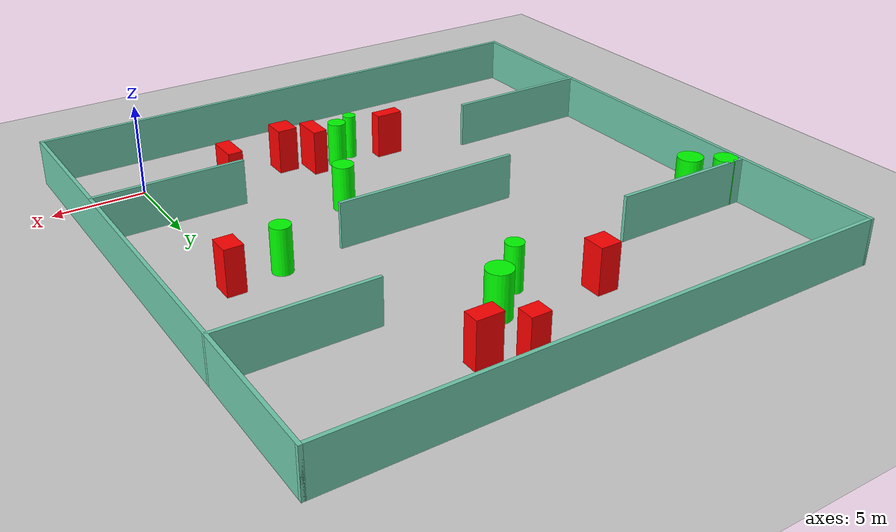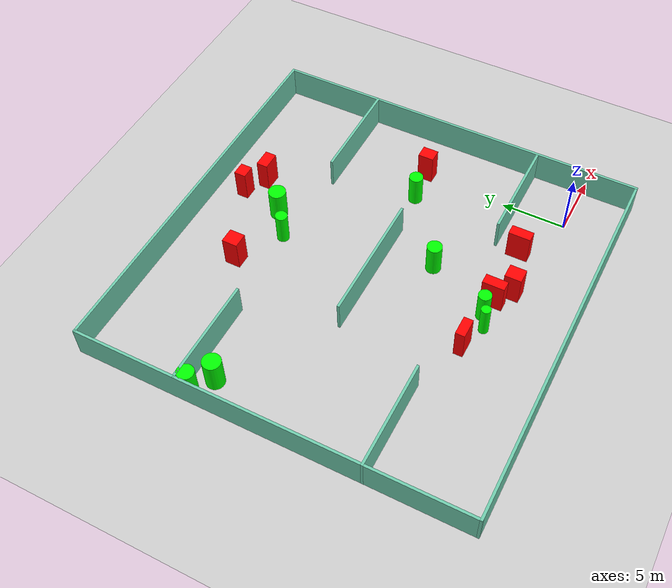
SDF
<sdf version="1.7">
 <world name="default">
  <light name="sun" type="directional">
   <pose>0 0 10 0 -0 0</pose>
   <diffuse>0.8 0.8 0.8 1</diffuse>
   <specular>0.2 0.2 0.2 1</specular>
   <attenuation>
    <range>1000</range>
    <constant>0.9</constant>
    <linear>0.01</linear>
    <quadratic>0.001</quadratic>
   </attenuation>
   <direction>-0.5 0.1 -0.9</direction>
   <spot><inner_angle>0</inner_angle><outer_angle>0</outer_angle><falloff>0</falloff></spot>
  </light>
  <model name="ground_plane">
   <static>1</static>
   <link name="link">
    <collision name="collision">
     <geometry><plane><normal>0 0 1</normal><size>100 100</size></plane></geometry>
     <surface>
      <contact><collide_bitmask>65535</collide_bitmask></contact>
      <friction><ode><mu>100</mu><mu2>50</mu2></ode></friction>
     </surface>
    </collision>
    <visual name="visual">
     <cast_shadows>0</cast_shadows>
     <geometry><plane><normal>0 0 1</normal><size>100 100</size></plane></geometry>
     <material>
      <script><uri>file://media/materials/scripts/gazebo.material</uri><name>Gazebo/Grey</name></script>
     </material>
    </visual>
   </link>
  </model>
  <gravity>0 0 -9.8</gravity>
  <magnetic_field>6e-06 2.3e-05 -4.2e-05</magnetic_field>
  <atmosphere type="adiabatic"/>
  <physics type="ode">
   <max_step_size>0.001</max_step_size>
   <real_time_factor>1</real_time_factor>
   <real_time_update_rate>1000</real_time_update_rate>
  </physics>
  <scene><ambient>0.4 0.4 0.4 1</ambient><background>0.7 0.7 0.7 1</background><shadows>1</shadows></scene>
  <spherical_coordinates>
   <surface_model>EARTH_WGS84</surface_model>
   <latitude_deg>0</latitude_deg>
   <longitude_deg>0</longitude_deg>
   <elevation>0</elevation>
   <heading_deg>0</heading_deg>
  </spherical_coordinates>
  <model name="my_base_walls">
   <link name="Wall_10">
    <collision name="Wall_10_Collision">
     <geometry><box><size>8.2 0.2 2.5</size></box></geometry>
     <pose>0 0 1.25 0 -0 0</pose>
    </collision>
    <visual name="Wall_10_Visual">
     <pose>0 0 1.25 0 -0 0</pose>
     <geometry><box><size>8.2 0.2 2.5</size></box></geometry>
     <material>
      <script><uri>file://media/materials/scripts/gazebo.material</uri><name>Gazebo/Grey</name></script>
      <ambient>0.435294 0.796078 0.67451 1</ambient>
     </material>
     <meta><layer>0</layer></meta>
    </visual>
    <pose>-11 -7 0 0 -0 0</pose>
   </link>
   <link name="Wall_12">
    <collision name="Wall_12_Collision">
     <geometry><box><size>8.2 0.2 2.5</size></box></geometry>
     <pose>0 0 1.25 0 -0 0</pose>
    </collision>
    <visual name="Wall_12_Visual">
     <pose>0 0 1.25 0 -0 0</pose>
     <geometry><box><size>8.2 0.2 2.5</size></box></geometry>
     <material>
      <script><uri>file://media/materials/scripts/gazebo.material</uri><name>Gazebo/Grey</name></script>
      <ambient>0.435294 0.796078 0.67451 1</ambient>
     </material>
     <meta><layer>0</layer></meta>
    </visual>
    <pose>-11 7 0 0 -0 0</pose>
   </link>
   <link name="Wall_14">
    <collision name="Wall_14_Collision">
     <geometry><box><size>8.2 0.2 2.5</size></box></geometry>
     <pose>0 0 1.25 0 -0 0</pose>
    </collision>
    <visual name="Wall_14_Visual">
     <pose>0 0 1.25 0 -0 0</pose>
     <geometry><box><size>8.2 0.2 2.5</size></box></geometry>
     <material>
      <script><uri>file://media/materials/scripts/gazebo.material</uri><name>Gazebo/Grey</name></script>
      <ambient>0.435294 0.796078 0.67451 1</ambient>
     </material>
     <meta><layer>0</layer></meta>
    </visual>
    <pose>11 7 0 0 -0 3.14159</pose>
   </link>
   <link name="Wall_16">
    <collision name="Wall_16_Collision">
     <geometry><box><size>10.2 0.2 2.5</size></box></geometry>
     <pose>0 0 1.25 0 -0 0</pose>
    </collision>
    <visual name="Wall_16_Visual">
     <pose>0 0 1.25 0 -0 0</pose>
     <geometry><box><size>10.2 0.2 2.5</size></box></geometry>
     <material>
      <script><uri>file://media/materials/scripts/gazebo.material</uri><name>Gazebo/Grey</name></script>
      <ambient>0.435294 0.796078 0.67451 1</ambient>
     </material>
     <meta><layer>0</layer></meta>
    </visual>
    <pose>0 0 0 0 -0 3.14159</pose>
   </link>
   <link name="Wall_2">
    <collision name="Wall_2_Collision">
     <geometry><box><size>30.2 0.2 2.5</size></box></geometry>
     <pose>0 0 1.25 0 -0 0</pose>
    </collision>
    <visual name="Wall_2_Visual">
     <pose>0 0 1.25 0 -0 0</pose>
     <geometry><box><size>30.2 0.2 2.5</size></box></geometry>
     <material>
      <script><uri>file://media/materials/scripts/gazebo.material</uri><name>Gazebo/Grey</name></script>
      <ambient>0.435294 0.796078 0.67451 1</ambient>
     </material>
     <meta><layer>0</layer></meta>
    </visual>
    <pose>0 -15 0 0 -0 3.14159</pose>
   </link>
   <link name="Wall_3">
    <collision name="Wall_3_Collision">
     <geometry><box><size>30.2 0.2 2.5</size></box></geometry>
     <pose>0 0 1.25 0 -0 0</pose>
    </collision>
    <visual name="Wall_3_Visual">
     <pose>0 0 1.25 0 -0 0</pose>
     <geometry><box><size>30.2 0.2 2.5</size></box></geometry>
     <material>
      <script><uri>file://media/materials/scripts/gazebo.material</uri><name>Gazebo/Grey</name></script>
      <ambient>0.435294 0.796078 0.67451 1</ambient>
     </material>
     <meta><layer>0</layer></meta>
    </visual>
    <pose>-15 0 0 0 -0 1.5708</pose>
   </link>
   <link name="Wall_4">
    <collision name="Wall_4_Collision">
     <geometry><box><size>30.2 0.2 2.5</size></box></geometry>
     <pose>0 0 1.25 0 -0 0</pose>
    </collision>
    <visual name="Wall_4_Visual">
     <pose>0 0 1.25 0 -0 0</pose>
     <geometry><box><size>30.2 0.2 2.5</size></box></geometry>
     <material>
      <script><uri>file://media/materials/scripts/gazebo.material</uri><name>Gazebo/Grey</name></script>
      <ambient>0.435294 0.796078 0.67451 1</ambient>
     </material>
     <meta><layer>0</layer></meta>
    </visual>
    <pose>0 15 0 0 -0 0</pose>
   </link>
   <link name="Wall_6">
    <collision name="Wall_6_Collision">
     <geometry><box><size>30.2 0.2 2.5</size></box></geometry>
     <pose>0 0 1.25 0 -0 0</pose>
    </collision>
    <visual name="Wall_6_Visual">
     <pose>0 0 1.25 0 -0 0</pose>
     <geometry><box><size>30.2 0.2 2.5</size></box></geometry>
     <material>
      <script><uri>file://media/materials/scripts/gazebo.material</uri><name>Gazebo/Grey</name></script>
      <ambient>0.435294 0.796078 0.67451 1</ambient>
     </material>
     <meta><layer>0</layer></meta>
    </visual>
    <pose>15 0 0 0 -0 1.5708</pose>
   </link>
   <link name="Wall_8">
    <collision name="Wall_8_Collision">
     <geometry><box><size>8.2 0.2 2.5</size></box></geometry>
     <pose>0 0 1.25 0 -0 0</pose>
    </collision>
    <visual name="Wall_8_Visual">
     <pose>0 0 1.25 0 -0 0</pose>
     <geometry><box><size>8.2 0.2 2.5</size></box></geometry>
     <material>
      <script><uri>file://media/materials/scripts/gazebo.material</uri><name>Gazebo/Grey</name></script>
      <ambient>0.435294 0.796078 0.67451 1</ambient>
     </material>
     <meta><layer>0</layer></meta>
    </visual>
    <pose>11 -7 0 0 -0 3.14159</pose>
   </link>
   <static>1</static>
   <pose>-11 11 0 0 -0 0</pose>
  </model>
  <model name="cylinder1">
   <static>1</static>
   <link name="link">
    <inertial>
     <mass>1</mass>
     <inertia><ixx>0.5</ixx><ixy>0</ixy><ixz>0</ixz><iyy>0.5</iyy><iyz>0</iyz><izz>1</izz></inertia>
    </inertial>
    <collision name="collision">
     <geometry><cylinder><radius>0.5440292260434421</radius><length>2.5</length></cylinder></geometry>
    </collision>
    <visual name="visual">
     <geometry><cylinder><radius>0.5440292260434421</radius><length>2.5</length></cylinder></geometry>
     <material>
      <ambient>0 1 0 1</ambient>
      <diffuse>0 1 0 1</diffuse>
      <specular>0.1 0.1 0.1 1</specular>
      <emissive>0 0 0 0</emissive>
     </material>
    </visual>
   </link>
   <pose>-2.525855583748548 11.439727270936451 1.25 0 0 0</pose>
  </model>
  <model name="cylinder2">
   <static>1</static>
   <link name="link">
    <inertial>
     <mass>1</mass>
     <inertia><ixx>0.5</ixx><ixy>0</ixy><ixz>0</ixz><iyy>0.5</iyy><iyz>0</iyz><izz>1</izz></inertia>
    </inertial>
    <collision name="collision">
     <geometry><cylinder><radius>0.6923728247004899</radius><length>2.5</length></cylinder></geometry>
    </collision>
    <visual name="visual">
     <geometry><cylinder><radius>0.6923728247004899</radius><length>2.5</length></cylinder></geometry>
     <material>
      <ambient>0 1 0 1</ambient>
      <diffuse>0 1 0 1</diffuse>
      <specular>0.1 0.1 0.1 1</specular>
      <emissive>0 0 0 0</emissive>
     </material>
    </visual>
   </link>
   <pose>-23.86532105991028 16.373936604385335 1.25 0 0 0</pose>
  </model>
  <model name="cylinder3">
   <static>1</static>
   <link name="link">
    <inertial>
     <mass>1</mass>
     <inertia><ixx>0.5</ixx><ixy>0</ixy><ixz>0</ixz><iyy>0.5</iyy><iyz>0</iyz><izz>1</izz></inertia>
    </inertial>
    <collision name="collision">
     <geometry><cylinder><radius>0.4729618606346361</radius><length>2.5</length></cylinder></geometry>
    </collision>
    <visual name="visual">
     <geometry><cylinder><radius>0.4729618606346361</radius><length>2.5</length></cylinder></geometry>
     <material>
      <ambient>0 1 0 1</ambient>
      <diffuse>0 1 0 1</diffuse>
      <specular>0.1 0.1 0.1 1</specular>
      <emissive>0 0 0 0</emissive>
     </material>
    </visual>
   </link>
   <pose>-10.648624685185375 18.708728916984263 1.25 0 0 0</pose>
  </model>
  <model name="cylinder4">
   <static>1</static>
   <link name="link">
    <inertial>
     <mass>1</mass>
     <inertia><ixx>0.5</ixx><ixy>0</ixy><ixz>0</ixz><iyy>0.5</iyy><iyz>0</iyz><izz>1</izz></inertia>
    </inertial>
    <collision name="collision">
     <geometry><cylinder><radius>0.580364227348078</radius><length>2.5</length></cylinder></geometry>
    </collision>
    <visual name="visual">
     <geometry><cylinder><radius>0.580364227348078</radius><length>2.5</length></cylinder></geometry>
     <material>
      <ambient>0 1 0 1</ambient>
      <diffuse>0 1 0 1</diffuse>
      <specular>0.1 0.1 0.1 1</specular>
      <emissive>0 0 0 0</emissive>
     </material>
    </visual>
   </link>
   <pose>-8.18407515742765 7.280280895026102 1.25 0 0 0</pose>
  </model>
  <model name="cylinder5">
   <static>1</static>
   <link name="link">
    <inertial>
     <mass>1</mass>
     <inertia><ixx>0.5</ixx><ixy>0</ixy><ixz>0</ixz><iyy>0.5</iyy><iyz>0</iyz><izz>1</izz></inertia>
    </inertial>
    <collision name="collision">
     <geometry><cylinder><radius>0.36807019094270826</radius><length>2.5</length></cylinder></geometry>
    </collision>
    <visual name="visual">
     <geometry><cylinder><radius>0.36807019094270826</radius><length>2.5</length></cylinder></geometry>
     <material>
      <ambient>0 1 0 1</ambient>
      <diffuse>0 1 0 1</diffuse>
      <specular>0.1 0.1 0.1 1</specular>
      <emissive>0 0 0 0</emissive>
     </material>
    </visual>
   </link>
   <pose>-11.657934395097207 1.769697462646433 1.25 0 0 0</pose>
  </model>
  <model name="cylinder6">
   <static>1</static>
   <link name="link">
    <inertial>
     <mass>1</mass>
     <inertia><ixx>0.5</ixx><ixy>0</ixy><ixz>0</ixz><iyy>0.5</iyy><iyz>0</iyz><izz>1</izz></inertia>
    </inertial>
    <collision name="collision">
     <geometry><cylinder><radius>0.6795298057629504</radius><length>2.5</length></cylinder></geometry>
    </collision>
    <visual name="visual">
     <geometry><cylinder><radius>0.6795298057629504</radius><length>2.5</length></cylinder></geometry>
     <material>
      <ambient>0 1 0 1</ambient>
      <diffuse>0 1 0 1</diffuse>
      <specular>0.1 0.1 0.1 1</specular>
      <emissive>0 0 0 0</emissive>
     </material>
    </visual>
   </link>
   <pose>-8.702432177398135 20.20788125220716 1.25 0 0 0</pose>
  </model>
  <model name="cylinder7">
   <static>1</static>
   <link name="link">
    <inertial>
     <mass>1</mass>
     <inertia><ixx>0.5</ixx><ixy>0</ixy><ixz>0</ixz><iyy>0.5</iyy><iyz>0</iyz><izz>1</izz></inertia>
    </inertial>
    <collision name="collision">
     <geometry><cylinder><radius>0.4990814178958708</radius><length>2.5</length></cylinder></geometry>
    </collision>
    <visual name="visual">
     <geometry><cylinder><radius>0.4990814178958708</radius><length>2.5</length></cylinder></geometry>
     <material>
      <ambient>0 1 0 1</ambient>
      <diffuse>0 1 0 1</diffuse>
      <specular>0.1 0.1 0.1 1</specular>
      <emissive>0 0 0 0</emissive>
     </material>
    </visual>
   </link>
   <pose>-10.553733976448836 2.3066666551701562 1.25 0 0 0</pose>
  </model>
  <model name="cylinder8">
   <static>1</static>
   <link name="link">
    <inertial>
     <mass>1</mass>
     <inertia><ixx>0.5</ixx><ixy>0</ixy><ixz>0</ixz><iyy>0.5</iyy><iyz>0</iyz><izz>1</izz></inertia>
    </inertial>
    <collision name="collision">
     <geometry><cylinder><radius>0.628372858372928</radius><length>2.5</length></cylinder></geometry>
    </collision>
    <visual name="visual">
     <geometry><cylinder><radius>0.628372858372928</radius><length>2.5</length></cylinder></geometry>
     <material>
      <ambient>0 1 0 1</ambient>
      <diffuse>0 1 0 1</diffuse>
      <specular>0.1 0.1 0.1 1</specular>
      <emissive>0 0 0 0</emissive>
     </material>
    </visual>
   </link>
   <pose>-25.330604454366433 17.475803479668215 1.25 0 0 0</pose>
  </model>
  <model name="box1">
   <static>1</static>
   <link name="link">
    <inertial>
     <mass>1</mass>
     <inertia><ixx>0.083</ixx><ixy>0</ixy><ixz>0</ixz><iyy>0.083</iyy><iyz>0</iyz><izz>0.083</izz></inertia>
    </inertial>
    <collision name="collision">
     <geometry><box><size>1.4178167893881368 0.8857583997204784 2.5</size></box></geometry>
    </collision>
    <visual name="visual">
     <geometry><box><size>1.4178167893881368 0.8857583997204784 2.5</size></box></geometry>
     <material>
      <ambient>1 0 0 1</ambient>
      <diffuse>1 0 0 1</diffuse>
      <specular>0.1 0.1 0.1 1</specular>
      <emissive>0 0 0 0</emissive>
     </material>
    </visual>
    <sensor name="my_contact" type="contact">
     <contact><collision>box_collision</collision><topic>__default_topic__</topic></contact>
    </sensor>
   </link>
   <pose>-6.136723602595298 22.669167888589456 1.25 0 0 0</pose>
  </model>
  <model name="box2">
   <static>1</static>
   <link name="link">
    <inertial>
     <mass>1</mass>
     <inertia><ixx>0.083</ixx><ixy>0</ixy><ixz>0</ixz><iyy>0.083</iyy><iyz>0</iyz><izz>0.083</izz></inertia>
    </inertial>
    <collision name="collision">
     <geometry><box><size>1.004499621440258 1.215353850641545 2.5</size></box></geometry>
    </collision>
    <visual name="visual">
     <geometry><box><size>1.004499621440258 1.215353850641545 2.5</size></box></geometry>
     <material>
      <ambient>1 0 0 1</ambient>
      <diffuse>1 0 0 1</diffuse>
      <specular>0.1 0.1 0.1 1</specular>
      <emissive>0 0 0 0</emissive>
     </material>
    </visual>
    <sensor name="my_contact" type="contact">
     <contact><collision>box_collision</collision><topic>__default_topic__</topic></contact>
    </sensor>
   </link>
   <pose>0.18914086968120714 11.677354728184095 1.25 0 0 0</pose>
  </model>
  <model name="box3">
   <static>1</static>
   <link name="link">
    <inertial>
     <mass>1</mass>
     <inertia><ixx>0.083</ixx><ixy>0</ixy><ixz>0</ixz><iyy>0.083</iyy><iyz>0</iyz><izz>0.083</izz></inertia>
    </inertial>
    <collision name="collision">
     <geometry><box><size>1.0454737541249017 0.9249363194879289 2.5</size></box></geometry>
    </collision>
    <visual name="visual">
     <geometry><box><size>1.0454737541249017 0.9249363194879289 2.5</size></box></geometry>
     <material>
      <ambient>1 0 0 1</ambient>
      <diffuse>1 0 0 1</diffuse>
      <specular>0.1 0.1 0.1 1</specular>
      <emissive>0 0 0 0</emissive>
     </material>
    </visual>
    <sensor name="my_contact" type="contact">
     <contact><collision>box_collision</collision><topic>__default_topic__</topic></contact>
    </sensor>
   </link>
   <pose>-7.945905733987921 23.679051106833697 1.25 0 0 0</pose>
  </model>
  <model name="box4">
   <static>1</static>
   <link name="link">
    <inertial>
     <mass>1</mass>
     <inertia><ixx>0.083</ixx><ixy>0</ixy><ixz>0</ixz><iyy>0.083</iyy><iyz>0</iyz><izz>0.083</izz></inertia>
    </inertial>
    <collision name="collision">
     <geometry><box><size>1.1131760502643808 1.2783370857664331 2.5</size></box></geometry>
    </collision>
    <visual name="visual">
     <geometry><box><size>1.1131760502643808 1.2783370857664331 2.5</size></box></geometry>
     <material>
      <ambient>1 0 0 1</ambient>
      <diffuse>1 0 0 1</diffuse>
      <specular>0.1 0.1 0.1 1</specular>
      <emissive>0 0 0 0</emissive>
     </material>
    </visual>
    <sensor name="my_contact" type="contact">
     <contact><collision>box_collision</collision><topic>__default_topic__</topic></contact>
    </sensor>
   </link>
   <pose>-7.796024551812975 1.1198094343116995 1.25 0 0 0</pose>
  </model>
  <model name="box5">
   <static>1</static>
   <link name="link">
    <inertial>
     <mass>1</mass>
     <inertia><ixx>0.083</ixx><ixy>0</ixy><ixz>0</ixz><iyy>0.083</iyy><iyz>0</iyz><izz>0.083</izz></inertia>
    </inertial>
    <collision name="collision">
     <geometry><box><size>0.8103699027498568 1.7014257307760259 2.5</size></box></geometry>
    </collision>
    <visual name="visual">
     <geometry><box><size>0.8103699027498568 1.7014257307760259 2.5</size></box></geometry>
     <material>
      <ambient>1 0 0 1</ambient>
      <diffuse>1 0 0 1</diffuse>
      <specular>0.1 0.1 0.1 1</specular>
      <emissive>0 0 0 0</emissive>
     </material>
    </visual>
    <sensor name="my_contact" type="contact">
     <contact><collision>box_collision</collision><topic>__default_topic__</topic></contact>
    </sensor>
   </link>
   <pose>-4.117573915228435 2.157262643026132 1.25 0 0 0</pose>
  </model>
  <model name="box6">
   <static>1</static>
   <link name="link">
    <inertial>
     <mass>1</mass>
     <inertia><ixx>0.083</ixx><ixy>0</ixy><ixz>0</ixz><iyy>0.083</iyy><iyz>0</iyz><izz>0.083</izz></inertia>
    </inertial>
    <collision name="collision">
     <geometry><box><size>1.1632796441626798 1.2162072931103038 2.5</size></box></geometry>
    </collision>
    <visual name="visual">
     <geometry><box><size>1.1632796441626798 1.2162072931103038 2.5</size></box></geometry>
     <material>
      <ambient>1 0 0 1</ambient>
      <diffuse>1 0 0 1</diffuse>
      <specular>0.1 0.1 0.1 1</specular>
      <emissive>0 0 0 0</emissive>
     </material>
    </visual>
    <sensor name="my_contact" type="contact">
     <contact><collision>box_collision</collision><topic>__default_topic__</topic></contact>
    </sensor>
   </link>
   <pose>-14.103761545125362 20.73703255917687 1.25 0 0 0</pose>
  </model>
  <model name="box7">
   <static>1</static>
   <link name="link">
    <inertial>
     <mass>1</mass>
     <inertia><ixx>0.083</ixx><ixy>0</ixy><ixz>0</ixz><iyy>0.083</iyy><iyz>0</iyz><izz>0.083</izz></inertia>
    </inertial>
    <collision name="collision">
     <geometry><box><size>0.7970361880900463 1.688019932218452 2.5</size></box></geometry>
    </collision>
    <visual name="visual">
     <geometry><box><size>0.7970361880900463 1.688019932218452 2.5</size></box></geometry>
     <material>
      <ambient>1 0 0 1</ambient>
      <diffuse>1 0 0 1</diffuse>
      <specular>0.1 0.1 0.1 1</specular>
      <emissive>0 0 0 0</emissive>
     </material>
    </visual>
    <sensor name="my_contact" type="contact">
     <contact><collision>box_collision</collision><topic>__default_topic__</topic></contact>
    </sensor>
   </link>
   <pose>-9.187776420136663 2.1142648171611453 1.25 0 0 0</pose>
  </model>
  <model name="box8">
   <static>1</static>
   <link name="link">
    <inertial>
     <mass>1</mass>
     <inertia><ixx>0.083</ixx><ixy>0</ixy><ixz>0</ixz><iyy>0.083</iyy><iyz>0</iyz><izz>0.083</izz></inertia>
    </inertial>
    <collision name="collision">
     <geometry><box><size>1.5144977737337464 0.7233647332747112 2.5</size></box></geometry>
    </collision>
    <visual name="visual">
     <geometry><box><size>1.5144977737337464 0.7233647332747112 2.5</size></box></geometry>
     <material>
      <ambient>1 0 0 1</ambient>
      <diffuse>1 0 0 1</diffuse>
      <specular>0.1 0.1 0.1 1</specular>
      <emissive>0 0 0 0</emissive>
     </material>
    </visual>
    <sensor name="my_contact" type="contact">
     <contact><collision>box_collision</collision><topic>__default_topic__</topic></contact>
    </sensor>
   </link>
   <pose>-13.683152116145688 2.524093999009751 1.25 0 0 0</pose>
  </model>
 </world>
</sdf>
